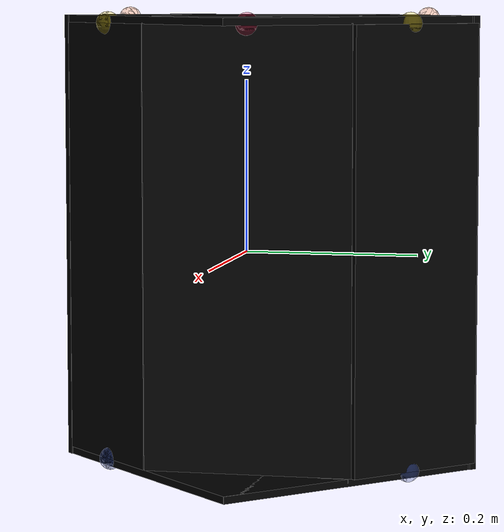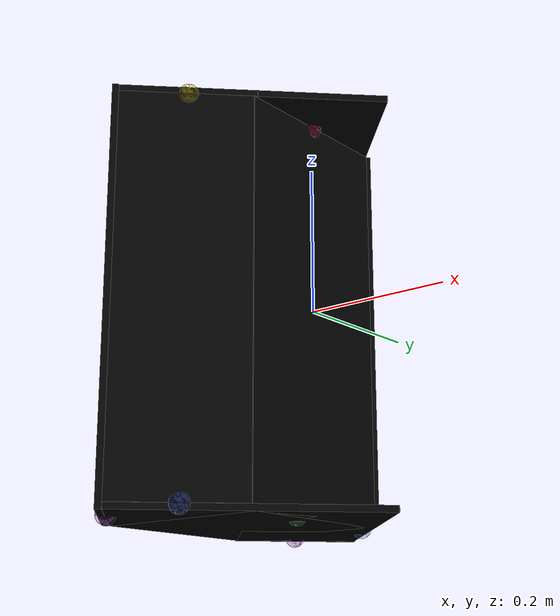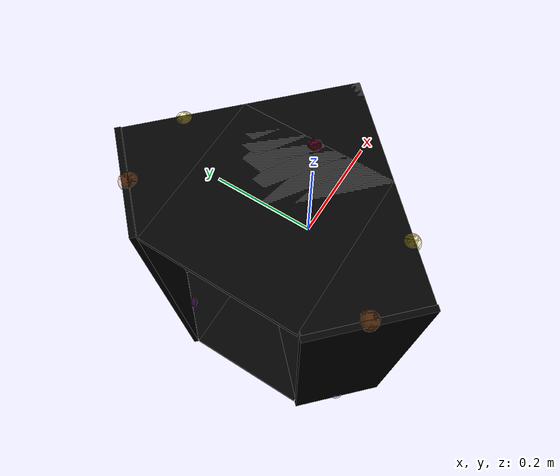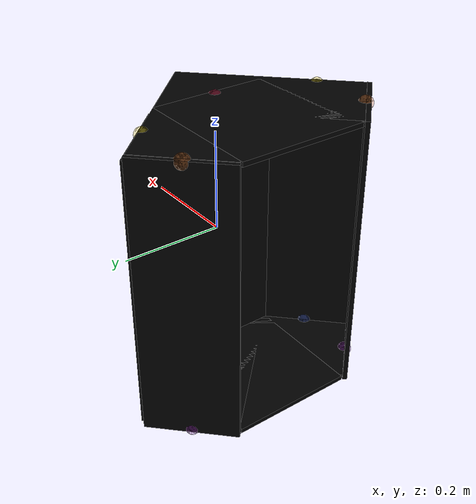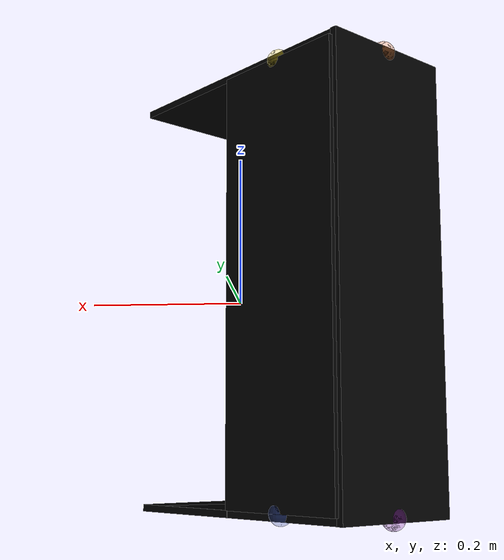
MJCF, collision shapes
<mujoco model="cabinet_akurum_0021">
  <custom>
    <numeric data="-0.427423 -0.316349 0.003993 0.003448 -0.707098 0.003448 0.707098" name="0_part0_initpos" />
    <numeric data="-0.270597 0.169268 0.007799 0.647802 -0.658506 0.257624 0.283466" name="6_part6_initpos" />
    <numeric data="-0.513557 0.168976 0.006523 0.662367 -0.643392 -0.293336 -0.247527" name="5_part5_initpos" />
    <numeric data="0.621851 0.141191 0.004387 0.27884 -0.262313 0.656652 0.649806" name="4_part4_initpos" />
    <numeric data="0.373475 0.135234 0.004387 0.657322 -0.64909 0.280504 0.26063" name="3_part3_initpos" />
    <numeric data="0.092789 -0.102338 0.004407 0.925112 0.0 0.0 0.379694" name="2_part2_initpos" />
    <numeric data="0.009676 0.232061 0.004407 0.39587 0.0 0.0 -0.918306" name="1_part1_initpos" />
  </custom>
  <asset>
    <mesh file="cabinet_akurum_0021/0.stl" name="part0" scale="0.0006956 0.0006956 0.0006956" />
    <mesh file="cabinet_akurum_0021/6.stl" name="part6" scale="0.0006956 0.0006956 0.0006956" />
    <mesh file="cabinet_akurum_0021/5.stl" name="part5" scale="0.0006956 0.0006956 0.0006956" />
    <mesh file="cabinet_akurum_0021/4.stl" name="part4" scale="0.0006956 0.0006956 0.0006956" />
    <mesh file="cabinet_akurum_0021/3.stl" name="part3" scale="0.0006956 0.0006956 0.0006956" />
    <mesh file="cabinet_akurum_0021/2.stl" name="part2" scale="0.0006956 0.0006956 0.0006956" />
    <mesh file="cabinet_akurum_0021/1.stl" name="part1" scale="0.0006956 0.0006956 0.0006956" />
  </asset>
  <equality>
    <weld active="false" body1="3_part3" body2="2_part2" solimp="1 1 0.5" solref="0.01 0.3" />
    <weld active="false" body1="4_part4" body2="2_part2" solimp="1 1 0.5" solref="0.01 0.3" />
    <weld active="false" body1="0_part0" body2="2_part2" solimp="1 1 0.5" solref="0.01 0.3" />
    <weld active="false" body1="3_part3" body2="1_part1" solimp="1 1 0.5" solref="0.01 0.3" />
    <weld active="false" body1="4_part4" body2="1_part1" solimp="1 1 0.5" solref="0.01 0.3" />
    <weld active="false" body1="6_part6" body2="2_part2" solimp="1 1 0.5" solref="0.01 0.3" />
    <weld active="false" body1="5_part5" body2="2_part2" solimp="1 1 0.5" solref="0.01 0.3" />
    <weld active="false" body1="0_part0" body2="1_part1" solimp="1 1 0.5" solref="0.01 0.3" />
    <weld active="false" body1="6_part6" body2="1_part1" solimp="1 1 0.5" solref="0.01 0.3" />
    <weld active="false" body1="5_part5" body2="1_part1" solimp="1 1 0.5" solref="0.01 0.3" />
  </equality>
  <worldbody>
    <body name="0_part0" pos="6.956e-11 -0.0 -2.0868e-09" quat="1 0 0 0">
      <geom conaffinity="0" contype="0" density="0" mesh="part0" name="0_part0_mesh" pos="0.0 0.0 0.0" rgba="0.82 0.71 0.55 1" type="mesh" />
      <site name="0_part0_horizontal_radius_site" pos="6.956e-11 -0.0 -2.0868e-09" quat="1 0 0 0" rgba="0 0 0 0" size="0.013911999999999999" />
      <site name="0_part0_top_site" pos="6.956e-11 0.0 0.2650236" quat="1 0 0 0" rgba="0 0 0 0" size="0.013911999999999999" />
      <site name="0_part0_bottom_site" pos="6.956e-11 0.0 -0.2650236041736" quat="1 0 0 0" rgba="0 0 0 0" size="0.013911999999999999" />
      <site name="0_part0_corner_site8" pos="-0.0044170624345999995 0.12493332314143998 0.2650236" quat="1 0 0 0" rgba="0 0 0 0" size="0.013911999999999999" />
      <site name="0_part0_corner_site7" pos="0.00441706257372 0.12493332314143998 0.2650236" quat="1 0 0 0" rgba="0 0 0 0" size="0.013911999999999999" />
      <site name="0_part0_corner_site6" pos="0.00441706257372 -0.12493332314143998 0.2650236" quat="1 0 0 0" rgba="0 0 0 0" size="0.013911999999999999" />
      <site name="0_part0_corner_site5" pos="-0.0044170624345999995 -0.12493332314143998 0.2650236" quat="1 0 0 0" rgba="0 0 0 0" size="0.013911999999999999" />
      <site name="0_part0_corner_site4" pos="-0.0044170624345999995 0.12493332314143998 -0.2650236041736" quat="1 0 0 0" rgba="0 0 0 0" size="0.013911999999999999" />
      <site name="0_part0_corner_site3" pos="0.00441706257372 0.12493332314143998 -0.2650236041736" quat="1 0 0 0" rgba="0 0 0 0" size="0.013911999999999999" />
      <site name="0_part0_corner_site2" pos="0.00441706257372 -0.12493332314143998 -0.2650236041736" quat="1 0 0 0" rgba="0 0 0 0" size="0.013911999999999999" />
      <site name="0_part0_corner_site1" pos="-0.0044170624345999995 -0.12493332314143998 -0.2650236041736" quat="1 0 0 0" rgba="0 0 0 0" size="0.013911999999999999" />
      <site name="frontpanel-toppanel,0,180,conn_site1" pos="-0.00029910799999999997 0.0 0.2650236" quat="1 0 0 0" rgba="0.9019 0.0980 0.2941 0.3" size="0.013911999999999999" />
      <site name="frontpanel-botpanel,0,180,conn_site1" pos="-0.029024800368 0.0 -0.2650236" quat="0 0 1 0" rgba="0.2352 0.7058 0.2941 0.3" size="0.013911999999999999" />
      <geom density="50" name="noviz_collision_0_part0_0" pos="-0.00019702870000000002 0.0 0.0007181235279999999" quat="1 0 0 0" rgba="0 0 0 0" size="0.0042200382560000005 0.12493330755999997 0.26574173743999996" solref="0.001 1" type="box" />
    </body>
    <body name="6_part6" pos="-0.06117293558136 0.18739998074724 -2.0868e-09" quat="1 0 0 0">
      <geom conaffinity="0" contype="0" density="0" mesh="part6" name="6_part6_mesh" pos="0.0 0.0 0.0" rgba="0.82 0.71 0.55 1" type="mesh" />
      <site name="6_part6_horizontal_radius_site" pos="0.0 2.7824e-10 -2.0868e-09" quat="1 0 0 0" rgba="0 0 0 0" size="0.013911999999999999" />
      <site name="6_part6_top_site" pos="0.0 3.478e-10 0.2650236" quat="1 0 0 0" rgba="0 0 0 0" size="0.013911999999999999" />
      <site name="6_part6_bottom_site" pos="0.0 3.478e-10 -0.2650236041736" quat="1 0 0 0" rgba="0 0 0 0" size="0.013911999999999999" />
      <site name="6_part6_corner_site8" pos="-0.06558999801596 0.06246666588344 0.2650236" quat="1 0 0 0" rgba="0 0 0 0" size="0.013911999999999999" />
      <site name="6_part6_corner_site7" pos="0.06558999801596 0.06246666588344 0.2650236" quat="1 0 0 0" rgba="0 0 0 0" size="0.013911999999999999" />
      <site name="6_part6_corner_site6" pos="0.06558999801596 -0.062466665257399995 0.2650236" quat="1 0 0 0" rgba="0 0 0 0" size="0.013911999999999999" />
      <site name="6_part6_corner_site5" pos="-0.06558999801596 -0.062466665257399995 0.2650236" quat="1 0 0 0" rgba="0 0 0 0" size="0.013911999999999999" />
      <site name="6_part6_corner_site4" pos="-0.06558999801596 0.06246666588344 -0.2650236041736" quat="1 0 0 0" rgba="0 0 0 0" size="0.013911999999999999" />
      <site name="6_part6_corner_site3" pos="0.06558999801596 0.06246666588344 -0.2650236041736" quat="1 0 0 0" rgba="0 0 0 0" size="0.013911999999999999" />
      <site name="6_part6_corner_site2" pos="0.06558999801596 -0.062466665257399995 -0.2650236041736" quat="1 0 0 0" rgba="0 0 0 0" size="0.013911999999999999" />
      <site name="6_part6_corner_site1" pos="-0.06558999801596 -0.062466665257399995 -0.2650236041736" quat="1 0 0 0" rgba="0 0 0 0" size="0.013911999999999999" />
      <site name="sidepanel-toppanel,0,180,conn_site1" pos="0.001561663736 -0.004457182208 0.2650236" quat="1 0 0 0" rgba="1.0 0.8823 0.0980 0.3" size="0.013911999999999999" />
      <site name="sidepanel-botpanel,0,180,conn_site1" pos="0.001561663736 -0.004457182208 -0.2650236" quat="1 0 0 0" rgba="0.2627 0.3882 0.8470 0.3" size="0.013911999999999999" />
      <geom density="50" name="noviz_collision_6_part6_0" pos="-0.001521631956 -0.001548308216 6.9559999999999996e-09" quat="-0.3826834 0 0 0.9238796" rgba="0 0 0 0" size="0.01 0.08938460000000001 0.2650236" solref="0.001 1" type="box" />
    </body>
    <body name="5_part5" pos="-0.06117293558136 -0.18739998206887995 -2.0868e-09" quat="1 0 0 0">
      <geom conaffinity="0" contype="0" density="0" mesh="part5" name="5_part5_mesh" pos="0.0 0.0 0.0" rgba="0.82 0.71 0.55 1" type="mesh" />
      <site name="5_part5_horizontal_radius_site" pos="0.0 1.0434e-09 -2.0868e-09" quat="1 0 0 0" rgba="0 0 0 0" size="0.013911999999999999" />
      <site name="5_part5_top_site" pos="0.0 1.0434e-09 0.2650236" quat="1 0 0 0" rgba="0 0 0 0" size="0.013911999999999999" />
      <site name="5_part5_bottom_site" pos="0.0 1.0434e-09 -0.2650236041736" quat="1 0 0 0" rgba="0 0 0 0" size="0.013911999999999999" />
      <site name="5_part5_corner_site8" pos="-0.06558999801596 0.062466665257399995 0.2650236" quat="1 0 0 0" rgba="0 0 0 0" size="0.013911999999999999" />
      <site name="5_part5_corner_site7" pos="0.06558999801596 0.062466665257399995 0.2650236" quat="1 0 0 0" rgba="0 0 0 0" size="0.013911999999999999" />
      <site name="5_part5_corner_site6" pos="0.06558999801596 -0.06246666317059999 0.2650236" quat="1 0 0 0" rgba="0 0 0 0" size="0.013911999999999999" />
      <site name="5_part5_corner_site5" pos="-0.06558999801596 -0.06246666317059999 0.2650236" quat="1 0 0 0" rgba="0 0 0 0" size="0.013911999999999999" />
      <site name="5_part5_corner_site4" pos="-0.06558999801596 0.062466665257399995 -0.2650236041736" quat="1 0 0 0" rgba="0 0 0 0" size="0.013911999999999999" />
      <site name="5_part5_corner_site3" pos="0.06558999801596 0.062466665257399995 -0.2650236041736" quat="1 0 0 0" rgba="0 0 0 0" size="0.013911999999999999" />
      <site name="5_part5_corner_site2" pos="0.06558999801596 -0.06246666317059999 -0.2650236041736" quat="1 0 0 0" rgba="0 0 0 0" size="0.013911999999999999" />
      <site name="5_part5_corner_site1" pos="-0.06558999801596 -0.06246666317059999 -0.2650236041736" quat="1 0 0 0" rgba="0 0 0 0" size="0.013911999999999999" />
      <site name="sidepanel-toppanel,0,180,conn_site2" pos="0.001561663736 0.004178949164000001 0.2650236" quat="1 0 0 0" rgba="1.0 0.8823 0.0980 0.3" size="0.013911999999999999" />
      <site name="sidepanel-botpanel,0,180,conn_site2" pos="0.001561663736 0.004178949164000001 -0.2650236" quat="1 0 0 0" rgba="0.2627 0.3882 0.8470 0.3" size="0.013911999999999999" />
      <geom density="50" name="noviz_collision_5_part5_0" pos="-0.001521631956 0.001548308216 0.0" quat="0.9238796 0 0 -0.3826834" rgba="0 0 0 0" size="0.00438228 0.08938460000000001 0.2650236" solref="0.001 1" type="box" />
    </body>
    <body name="4_part4" pos="-0.1861062628964 0.19052332317464 4.31272e-09" quat="1 0 0 0">
      <geom conaffinity="0" contype="0" density="0" mesh="part4" name="4_part4_mesh" pos="0.0 0.0 0.0" rgba="0.82 0.71 0.55 1" type="mesh" />
      <site name="4_part4_horizontal_radius_site" pos="-6.956e-10 0.0 0.0" quat="1 0 0 0" rgba="0 0 0 0" size="0.013911999999999999" />
      <site name="4_part4_top_site" pos="-6.956e-10 0.0 0.27385772848632" quat="1 0 0 0" rgba="0 0 0 0" size="0.013911999999999999" />
      <site name="4_part4_bottom_site" pos="-6.956e-10 0.0 -0.27385772848632" quat="1 0 0 0" rgba="0 0 0 0" size="0.013911999999999999" />
      <site name="4_part4_corner_site8" pos="-0.06558999801596 0.06559000865864001 0.27385772848632" quat="1 0 0 0" rgba="0 0 0 0" size="0.013911999999999999" />
      <site name="4_part4_corner_site7" pos="0.06558999662475999 0.06559000865864001 0.27385772848632" quat="1 0 0 0" rgba="0 0 0 0" size="0.013911999999999999" />
      <site name="4_part4_corner_site6" pos="0.06558999662475999 -0.06559000865864001 0.27385772848632" quat="1 0 0 0" rgba="0 0 0 0" size="0.013911999999999999" />
      <site name="4_part4_corner_site5" pos="-0.06558999801596 -0.06559000865864001 0.27385772848632" quat="1 0 0 0" rgba="0 0 0 0" size="0.013911999999999999" />
      <site name="4_part4_corner_site4" pos="-0.06558999801596 0.06559000865864001 -0.27385772848632" quat="1 0 0 0" rgba="0 0 0 0" size="0.013911999999999999" />
      <site name="4_part4_corner_site3" pos="0.06558999662475999 0.06559000865864001 -0.27385772848632" quat="1 0 0 0" rgba="0 0 0 0" size="0.013911999999999999" />
      <site name="4_part4_corner_site2" pos="0.06558999662475999 -0.06559000865864001 -0.27385772848632" quat="1 0 0 0" rgba="0 0 0 0" size="0.013911999999999999" />
      <site name="4_part4_corner_site1" pos="-0.06558999801596 -0.06559000865864001 -0.27385772848632" quat="1 0 0 0" rgba="0 0 0 0" size="0.013911999999999999" />
      <site name="backpanel-toppanel,0,180,conn_site2" pos="0.002328736636 -0.0033373635919999992 0.26944066" quat="-0.2705979 0.6532816 -0.270598 -0.6532815" rgba="0.9607 0.5098 0.1921 0.3" size="0.013911999999999999" />
      <site name="backpanel-botpanel,0,180,conn_site1" pos="0.002328736636 -0.0033373635919999992 -0.26944066" quat="-0.2705979 0.6532816 -0.270598 -0.6532815" rgba="0.5686 0.1176 0.7058 0.3" size="0.013911999999999999" />
      <geom density="50" name="noviz_collision_4_part4_0" pos="0.0 0.0 -1.3911999999999999e-08" quat="0.9238796 0 0 -0.3826834" rgba="0 0 0 0" size="0.0044170599999999996 0.088689 0.27385771999999997" solref="0.001 1" type="box" />
    </body>
    <body name="3_part3" pos="-0.1861062628964 -0.19052331538391998 4.31272e-09" quat="1 0 0 0">
      <geom conaffinity="0" contype="0" density="0" mesh="part3" name="3_part3_mesh" pos="0.0 0.0 0.0" rgba="0.82 0.71 0.55 1" type="mesh" />
      <site name="3_part3_horizontal_radius_site" pos="-6.956e-10 9.042799999999999e-10 0.0" quat="1 0 0 0" rgba="0 0 0 0" size="0.013911999999999999" />
      <site name="3_part3_top_site" pos="-6.956e-10 9.042799999999999e-10 0.27385772848632" quat="1 0 0 0" rgba="0 0 0 0" size="0.013911999999999999" />
      <site name="3_part3_bottom_site" pos="-6.956e-10 9.042799999999999e-10 -0.27385772848632" quat="1 0 0 0" rgba="0 0 0 0" size="0.013911999999999999" />
      <site name="3_part3_corner_site8" pos="-0.06558999801596 0.06558999801596 0.27385772848632" quat="1 0 0 0" rgba="0 0 0 0" size="0.013911999999999999" />
      <site name="3_part3_corner_site7" pos="0.06558999662475999 0.06558999801596 0.27385772848632" quat="1 0 0 0" rgba="0 0 0 0" size="0.013911999999999999" />
      <site name="3_part3_corner_site6" pos="0.06558999662475999 -0.0655899962074 0.27385772848632" quat="1 0 0 0" rgba="0 0 0 0" size="0.013911999999999999" />
      <site name="3_part3_corner_site5" pos="-0.06558999801596 -0.0655899962074 0.27385772848632" quat="1 0 0 0" rgba="0 0 0 0" size="0.013911999999999999" />
      <site name="3_part3_corner_site4" pos="-0.06558999801596 0.06558999801596 -0.27385772848632" quat="1 0 0 0" rgba="0 0 0 0" size="0.013911999999999999" />
      <site name="3_part3_corner_site3" pos="0.06558999662475999 0.06558999801596 -0.27385772848632" quat="1 0 0 0" rgba="0 0 0 0" size="0.013911999999999999" />
      <site name="3_part3_corner_site2" pos="0.06558999662475999 -0.0655899962074 -0.27385772848632" quat="1 0 0 0" rgba="0 0 0 0" size="0.013911999999999999" />
      <site name="3_part3_corner_site1" pos="-0.06558999801596 -0.0655899962074 -0.27385772848632" quat="1 0 0 0" rgba="0 0 0 0" size="0.013911999999999999" />
      <site name="backpanel-toppanel,0,180,conn_site1" pos="0.004067736636 0.00305910968 0.26944066" quat="0.6532814 0.2705982 -0.6532815 0.2705982" rgba="0.9607 0.5098 0.1921 0.3" size="0.013911999999999999" />
      <site name="backpanel-botpanel,0,180,conn_site2" pos="0.004067736636 0.00305910968 -0.26944066" quat="0.6532814 0.2705982 -0.6532815 0.2705982" rgba="0.5686 0.1176 0.7058 0.3" size="0.013911999999999999" />
      <geom density="50" name="noviz_collision_3_part3_0" pos="0.0 -2.0868000000000002e-08 -1.3911999999999999e-08" quat="-0.3826834 0 0 0.9238796" rgba="0 0 0 0" size="0.0044170599999999996 0.088689 0.27385771999999997" solref="0.001 1" type="box" />
    </body>
    <body name="2_part2" pos="-0.05804960400531999 0.0 0.2694406558264" quat="1 0 0 0">
      <geom conaffinity="0" contype="0" density="0" mesh="part2" name="2_part2_mesh" pos="0.0 0.0 0.0" rgba="0.82 0.71 0.55 1" type="mesh" />
      <site name="2_part2_horizontal_radius_site" pos="-0.0 0.0 0.0" quat="1 0 0 0" rgba="0 0 0 0" size="0.013911999999999999" />
      <site name="2_part2_top_site" pos="0.0 0.0 0.0044170599999999996" quat="1 0 0 0" rgba="0 0 0 0" size="0.013911999999999999" />
      <site name="2_part2_bottom_site" pos="0.0 0.0 -0.0044170599999999996" quat="1 0 0 0" rgba="0 0 0 0" size="0.013911999999999999" />
      <site name="2_part2_corner_site8" pos="-0.18739998471216 0.24986664628287997 0.0044170599999999996" quat="1 0 0 0" rgba="0 0 0 0" size="0.013911999999999999" />
      <site name="2_part2_corner_site7" pos="0.18739998471216 0.24986664628287997 0.0044170599999999996" quat="1 0 0 0" rgba="0 0 0 0" size="0.013911999999999999" />
      <site name="2_part2_corner_site6" pos="0.18739998471216 -0.24986664628287997 0.0044170599999999996" quat="1 0 0 0" rgba="0 0 0 0" size="0.013911999999999999" />
      <site name="2_part2_corner_site5" pos="-0.18739998471216 -0.24986664628287997 0.0044170599999999996" quat="1 0 0 0" rgba="0 0 0 0" size="0.013911999999999999" />
      <site name="2_part2_corner_site4" pos="-0.18739998471216 0.24986664628287997 -0.0044170599999999996" quat="1 0 0 0" rgba="0 0 0 0" size="0.013911999999999999" />
      <site name="2_part2_corner_site3" pos="0.18739998471216 0.24986664628287997 -0.0044170599999999996" quat="1 0 0 0" rgba="0 0 0 0" size="0.013911999999999999" />
      <site name="2_part2_corner_site2" pos="0.18739998471216 -0.24986664628287997 -0.0044170599999999996" quat="1 0 0 0" rgba="0 0 0 0" size="0.013911999999999999" />
      <site name="2_part2_corner_site1" pos="-0.18739998471216 -0.24986664628287997 -0.0044170599999999996" quat="1 0 0 0" rgba="0 0 0 0" size="0.013911999999999999" />
      <site name="toppanel-frontpanel,0,180,conn_site1" pos="0.057750499691999996 0.0 -0.0044170669559999995" quat="1 0 0 0" rgba="0.9019 0.0980 0.2941 0.3" size="0.013911999999999999" />
      <site name="toppanel-sidepanel,0,180,conn_site2" pos="-0.001561663736 -0.18322103999999997 -0.0044170669559999995" quat="1 0 0 0" rgba="1.0 0.8823 0.0980 0.3" size="0.013911999999999999" />
      <site name="toppanel-sidepanel,0,180,conn_site1" pos="-0.001561663736 0.18294280000000002 -0.0044170669559999995" quat="1 0 0 0" rgba="1.0 0.8823 0.0980 0.3" size="0.013911999999999999" />
      <site name="toppanel-backpanel,0,180,conn_site2" pos="-0.12572789144 0.18718595999999998 0.0" quat="-0.2705979 0.6532816 -0.270598 -0.6532815" rgba="0.9607 0.5098 0.1921 0.3" size="0.013911999999999999" />
      <site name="toppanel-backpanel,0,180,conn_site1" pos="-0.12398889144 -0.18746420000000003 0.0" quat="0.6532814 0.2705982 -0.6532815 0.2705982" rgba="0.9607 0.5098 0.1921 0.3" size="0.013911999999999999" />
      <geom density="50" name="noviz_collision_2_part2_0" pos="-0.061454472308 0.0 0.0" quat="1 0 0 0" rgba="0 0 0 0" size="0.1259036 0.12172999999999999 0.0044170669559999995" solref="0.001 1" type="box" />
      <geom density="50" name="noviz_collision_2_part2_1" pos="0.00031480769199999996 0.06260399999999999 0.0" quat="0.9238795 0 0 0.3826836" rgba="0 0 0 0" size="0.08695 0.175639 0.0044170669559999995" solref="0.001 1" type="box" />
      <geom density="50" name="noviz_collision_2_part2_2" pos="-0.000172112308 -0.06336916 0.0" quat="0.9238796 0 0 -0.3826834" rgba="0 0 0 0" size="0.08695 0.175639 0.0044170669559999995" solref="0.001 1" type="box" />
    </body>
    <body name="1_part1" pos="-0.05804960400531999 0.0 -0.2694406641736" quat="1 0 0 0">
      <geom conaffinity="0" contype="0" density="0" mesh="part1" name="1_part1_mesh" pos="0.0 0.0 0.0" rgba="0.82 0.71 0.55 1" type="mesh" />
      <site name="1_part1_horizontal_radius_site" pos="-0.0 0.0 0.0" quat="1 0 0 0" rgba="0 0 0 0" size="0.013911999999999999" />
      <site name="1_part1_top_site" pos="0.0 0.0 0.0044170599999999996" quat="1 0 0 0" rgba="0 0 0 0" size="0.013911999999999999" />
      <site name="1_part1_bottom_site" pos="0.0 0.0 -0.0044170599999999996" quat="1 0 0 0" rgba="0 0 0 0" size="0.013911999999999999" />
      <site name="1_part1_corner_site8" pos="-0.18739998471216 0.24986664628287997 0.0044170599999999996" quat="1 0 0 0" rgba="0 0 0 0" size="0.013911999999999999" />
      <site name="1_part1_corner_site7" pos="0.18739998471216 0.24986664628287997 0.0044170599999999996" quat="1 0 0 0" rgba="0 0 0 0" size="0.013911999999999999" />
      <site name="1_part1_corner_site6" pos="0.18739998471216 -0.24986664628287997 0.0044170599999999996" quat="1 0 0 0" rgba="0 0 0 0" size="0.013911999999999999" />
      <site name="1_part1_corner_site5" pos="-0.18739998471216 -0.24986664628287997 0.0044170599999999996" quat="1 0 0 0" rgba="0 0 0 0" size="0.013911999999999999" />
      <site name="1_part1_corner_site4" pos="-0.18739998471216 0.24986664628287997 -0.0044170599999999996" quat="1 0 0 0" rgba="0 0 0 0" size="0.013911999999999999" />
      <site name="1_part1_corner_site3" pos="0.18739998471216 0.24986664628287997 -0.0044170599999999996" quat="1 0 0 0" rgba="0 0 0 0" size="0.013911999999999999" />
      <site name="1_part1_corner_site2" pos="0.18739998471216 -0.24986664628287997 -0.0044170599999999996" quat="1 0 0 0" rgba="0 0 0 0" size="0.013911999999999999" />
      <site name="1_part1_corner_site1" pos="-0.18739998471216 -0.24986664628287997 -0.0044170599999999996" quat="1 0 0 0" rgba="0 0 0 0" size="0.013911999999999999" />
      <site name="botpanel-frontpanel,0,180,conn_site1" pos="0.029024800368 0.0 0.0044170669559999995" quat="0 0 1 0" rgba="0.2352 0.7058 0.2941 0.3" size="0.013911999999999999" />
      <site name="botpanel-sidepanel,0,180,conn_site2" pos="-0.001561663736 -0.18322103999999997 0.0044170669559999995" quat="1 0 0 0" rgba="0.2627 0.3882 0.8470 0.3" size="0.013911999999999999" />
      <site name="botpanel-sidepanel,0,180,conn_site1" pos="-0.001561663736 0.18294280000000002 0.0044170669559999995" quat="1 0 0 0" rgba="0.2627 0.3882 0.8470 0.3" size="0.013911999999999999" />
      <site name="botpanel-backpanel,0,180,conn_site2" pos="-0.12398889144 -0.18746420000000003 0.0" quat="0.6532814 0.2705982 -0.6532815 0.2705982" rgba="0.5686 0.1176 0.7058 0.3" size="0.013911999999999999" />
      <site name="botpanel-backpanel,0,180,conn_site1" pos="-0.12572789144 0.18718595999999998 0.0" quat="-0.2705979 0.6532816 -0.270598 -0.6532815" rgba="0.5686 0.1176 0.7058 0.3" size="0.013911999999999999" />
      <geom density="50" name="noviz_collision_1_part1_0" pos="-0.000172112308 -0.06336916 0.0" quat="0.9238796 0 0 -0.3826834" rgba="0 0 0 0" size="0.08695 0.175639 0.0044170669559999995" solref="0.001 1" type="box" />
      <geom density="50" name="noviz_collision_1_part1_1" pos="0.00031480769199999996 0.06260399999999999 0.0" quat="0.9238795 0 0 0.3826836" rgba="0 0 0 0" size="0.08695 0.175639 0.0044170669559999995" solref="0.001 1" type="box" />
      <geom density="50" name="noviz_collision_1_part1_2" pos="-0.061454472308 0.0 0.0" quat="1 0 0 0" rgba="0 0 0 0" size="0.1259036 0.12172999999999999 0.0044170669559999995" solref="0.001 1" type="box" />
    </body>
  </worldbody>
  <actuator />
  <sensor />
  <contact />
  <default />
</mujoco>
